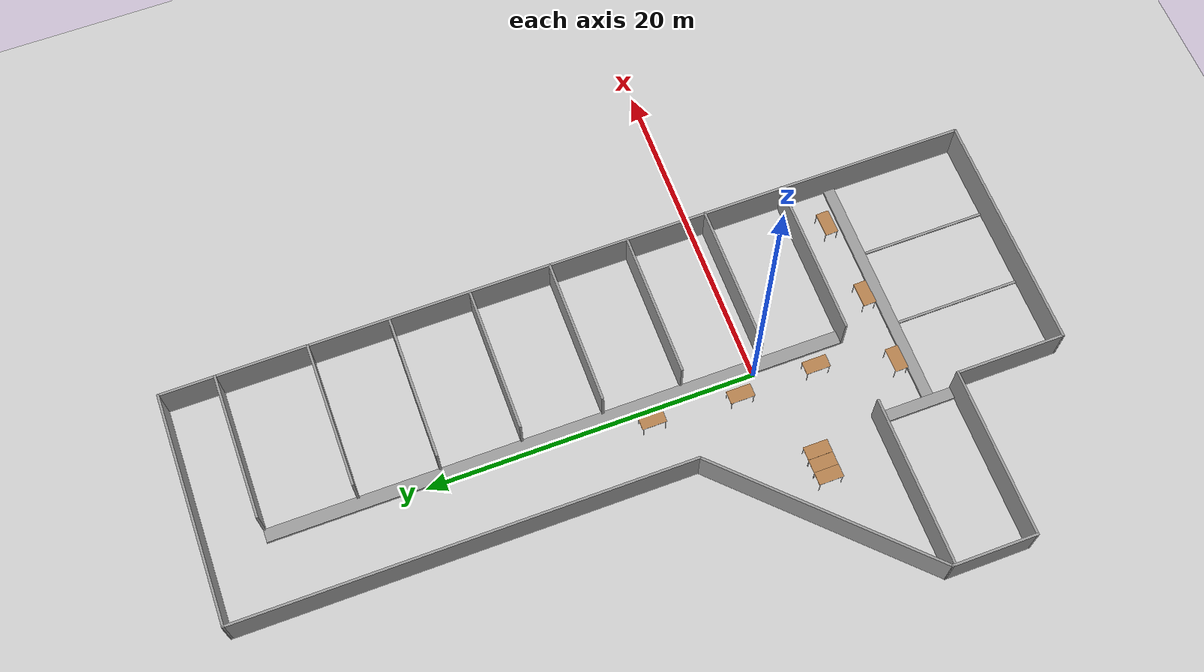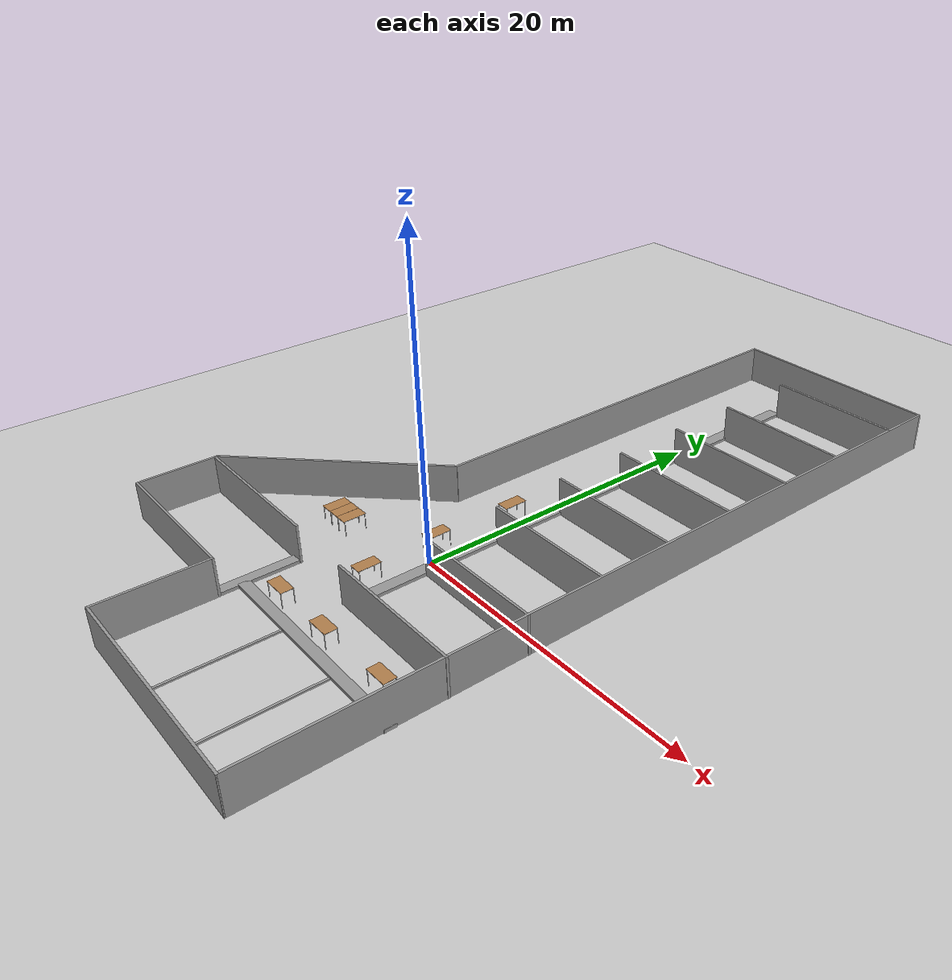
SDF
<sdf version="1.6">
 <world name="default">
  <model name="test__">
   <pose>-2.61572 7.75657 0 0 -0 0</pose>
   <link name="Wall_1">
    <collision name="Wall_1_Collision">
     <geometry><box><size>15 0.15 2.5</size></box></geometry>
     <pose>0 0 1.25 0 -0 0</pose>
    </collision>
    <visual name="Wall_1_Visual">
     <pose>0 0 1.25 0 -0 0</pose>
     <geometry><box><size>15 0.15 2.5</size></box></geometry>
     <material>
      <script><uri>file://media/materials/scripts/gazebo.material</uri><name>Gazebo/Grey</name></script>
      <ambient>1 1 1 1</ambient>
     </material>
     <meta><layer>0</layer></meta>
    </visual>
    <pose>-7.10691 -7.85176 0 0 -0 -2.35619</pose>
   </link>
   <link name="Wall_11">
    <collision name="Wall_11_Collision">
     <geometry><box><size>14.3012 0.15 2.5</size></box></geometry>
     <pose>0 0 1.25 0 -0 0</pose>
    </collision>
    <visual name="Wall_11_Visual">
     <pose>0 0 1.25 0 -0 0</pose>
     <geometry><box><size>14.3012 0.15 2.5</size></box></geometry>
     <material>
      <script><uri>file://media/materials/scripts/gazebo.material</uri><name>Gazebo/Grey</name></script>
      <ambient>1 1 1 1</ambient>
     </material>
     <meta><layer>0</layer></meta>
    </visual>
    <pose>5.26724 24.8122 0 0 -0 3.13958</pose>
   </link>
   <link name="Wall_12">
    <collision name="Wall_12_Collision">
     <geometry><box><size>27.5 0.15 2.5</size></box></geometry>
     <pose>0 0 1.25 0 -0 0</pose>
    </collision>
    <visual name="Wall_12_Visual">
     <pose>0 0 1.25 0 -0 0</pose>
     <geometry><box><size>27.5 0.15 2.5</size></box></geometry>
     <material>
      <script><uri>file://media/materials/scripts/gazebo.material</uri><name>Gazebo/Grey</name></script>
      <ambient>1 1 1 1</ambient>
     </material>
     <meta><layer>0</layer></meta>
    </visual>
    <pose>-1.80834 11.1571 0 0 -0 -1.5708</pose>
   </link>
   <link name="Wall_21">
    <collision name="Wall_21_Collision">
     <geometry><box><size>10.2504 0.15 2.5</size></box></geometry>
     <pose>0 0 1.25 0 -0 0</pose>
    </collision>
    <visual name="Wall_21_Visual">
     <pose>0 0 1.25 0 -0 0</pose>
     <geometry><box><size>10.2504 0.15 2.5</size></box></geometry>
     <material>
      <script><uri>file://media/materials/scripts/gazebo.material</uri><name>Gazebo/Grey</name></script>
      <ambient>1 1 1 1</ambient>
     </material>
     <meta><layer>0</layer></meta>
    </visual>
    <pose>-7.21776 -13.2674 0 0 -0 -3.14011</pose>
   </link>
   <link name="Wall_25">
    <collision name="Wall_25_Collision">
     <geometry><box><size>8.5 0.15 0.1</size></box></geometry>
     <pose>0 0 0.05 0 -0 0</pose>
    </collision>
    <visual name="Wall_25_Visual">
     <pose>0 0 0.05 0 -0 0</pose>
     <geometry><box><size>8.5 0.15 0.1</size></box></geometry>
     <material>
      <script><uri>file://media/materials/scripts/gazebo.material</uri><name>Gazebo/Grey</name></script>
      <ambient>1 1 1 1</ambient>
     </material>
     <meta><layer>0</layer></meta>
    </visual>
    <pose>2.73219 -20.5989 0 0 -0 -1.5708</pose>
   </link>
   <link name="Wall_27">
    <collision name="Wall_27_Collision">
     <geometry><box><size>8.5 0.15 0.1</size></box></geometry>
     <pose>0 0 0.05 0 -0 0</pose>
    </collision>
    <visual name="Wall_27_Visual">
     <pose>0 0 0.05 0 -0 0</pose>
     <geometry><box><size>8.5 0.15 0.1</size></box></geometry>
     <material>
      <script><uri>file://media/materials/scripts/gazebo.material</uri><name>Gazebo/Grey</name></script>
      <ambient>1 1 1 1</ambient>
     </material>
     <meta><layer>0</layer></meta>
    </visual>
    <pose>7.59109 -20.6044 0 0 -0 -1.5708</pose>
   </link>
   <link name="Wall_29">
    <collision name="Wall_29_Collision">
     <geometry><box><size>9.75 0.15 2.5</size></box></geometry>
     <pose>0 0 1.25 0 -0 0</pose>
    </collision>
    <visual name="Wall_29_Visual">
     <pose>0 0 1.25 0 -0 0</pose>
     <geometry><box><size>9.75 0.15 2.5</size></box></geometry>
     <material>
      <script><uri>file://media/materials/scripts/gazebo.material</uri><name>Gazebo/Grey</name></script>
      <ambient>1 1 1 1</ambient>
     </material>
     <meta><layer>0</layer></meta>
    </visual>
    <pose>7.56587 -13.406 0 0 -0 3.14159</pose>
   </link>
   <link name="Wall_3">
    <collision name="Wall_3_Collision">
     <geometry><box><size>5.25 0.15 2.5</size></box></geometry>
     <pose>0 0 1.25 0 -0 0</pose>
    </collision>
    <visual name="Wall_3_Visual">
     <pose>0 0 1.25 0 -0 0</pose>
     <geometry><box><size>5.25 0.15 2.5</size></box></geometry>
     <material>
      <script><uri>file://media/materials/scripts/gazebo.material</uri><name>Gazebo/Grey</name></script>
      <ambient>1 1 1 1</ambient>
     </material>
     <meta><layer>0</layer></meta>
    </visual>
    <pose>-12.3572 -15.652 0 0 -0 -1.5708</pose>
   </link>
   <link name="Wall_31">
    <collision name="Wall_31_Collision">
     <geometry><box><size>34.9 0.8 0.2</size></box></geometry>
     <pose>0 0 0.1 0 -0 0</pose>
    </collision>
    <visual name="Wall_31_Visual">
     <pose>0 0 0.1 0 -0 0</pose>
     <geometry><box><size>34.9 0.8 0.2</size></box></geometry>
     <material>
      <script><uri>file://media/materials/scripts/gazebo.material</uri><name>Gazebo/Grey</name></script>
      <ambient>1 1 1 1</ambient>
     </material>
     <meta><layer>0</layer></meta>
    </visual>
    <pose>3.07724 4.10911 0 0 -0 1.5708</pose>
   </link>
   <link name="Wall_33">
    <collision name="Wall_33_Collision">
     <geometry><box><size>9 0.15 2.5</size></box></geometry>
     <pose>0 0 1.25 0 -0 0</pose>
    </collision>
    <visual name="Wall_33_Visual">
     <pose>0 0 1.25 0 -0 0</pose>
     <geometry><box><size>9 0.15 2.5</size></box></geometry>
     <material>
      <script><uri>file://media/materials/scripts/gazebo.material</uri><name>Gazebo/Grey</name></script>
      <ambient>1 1 1 1</ambient>
     </material>
     <meta><layer>0</layer></meta>
    </visual>
    <pose>7.93132 -8.48567 0 0 -0 0</pose>
   </link>
   <link name="Wall_35">
    <collision name="Wall_35_Collision">
     <geometry><box><size>9 0.15 2.5</size></box></geometry>
     <pose>0 0 1.25 0 -0 0</pose>
    </collision>
    <visual name="Wall_35_Visual">
     <pose>0 0 1.25 0 -0 0</pose>
     <geometry><box><size>9 0.15 2.5</size></box></geometry>
     <material>
      <script><uri>file://media/materials/scripts/gazebo.material</uri><name>Gazebo/Grey</name></script>
      <ambient>1 1 1 1</ambient>
     </material>
     <meta><layer>0</layer></meta>
    </visual>
    <pose>7.91645 -3.54945 0 0 -0 0</pose>
   </link>
   <link name="Wall_37">
    <collision name="Wall_37_Collision">
     <geometry><box><size>9 0.15 2.5</size></box></geometry>
     <pose>0 0 1.25 0 -0 0</pose>
    </collision>
    <visual name="Wall_37_Visual">
     <pose>0 0 1.25 0 -0 0</pose>
     <geometry><box><size>9 0.15 2.5</size></box></geometry>
     <material>
      <script><uri>file://media/materials/scripts/gazebo.material</uri><name>Gazebo/Grey</name></script>
      <ambient>1 1 1 1</ambient>
     </material>
     <meta><layer>0</layer></meta>
    </visual>
    <pose>7.85698 1.29757 0 0 -0 0</pose>
   </link>
   <link name="Wall_39">
    <collision name="Wall_39_Collision">
     <geometry><box><size>9 0.15 2.5</size></box></geometry>
     <pose>0 0 1.25 0 -0 0</pose>
    </collision>
    <visual name="Wall_39_Visual">
     <pose>0 0 1.25 0 -0 0</pose>
     <geometry><box><size>9 0.15 2.5</size></box></geometry>
     <material>
      <script><uri>file://media/materials/scripts/gazebo.material</uri><name>Gazebo/Grey</name></script>
      <ambient>1 1 1 1</ambient>
     </material>
     <meta><layer>0</layer></meta>
    </visual>
    <pose>7.88083 6.21966 0 0 -0 0</pose>
   </link>
   <link name="Wall_4">
    <collision name="Wall_4_Collision">
     <geometry><box><size>10.3399 0.15 2.5</size></box></geometry>
     <pose>0 0 1.25 0 -0 0</pose>
    </collision>
    <visual name="Wall_4_Visual">
     <pose>0 0 1.25 0 -0 0</pose>
     <geometry><box><size>10.3399 0.15 2.5</size></box></geometry>
     <material>
      <script><uri>file://media/materials/scripts/gazebo.material</uri><name>Gazebo/Grey</name></script>
      <ambient>1 1 1 1</ambient>
     </material>
     <meta><layer>0</layer></meta>
    </visual>
    <pose>-7.26247 -18.202 0 0 -0 1.4e-05</pose>
   </link>
   <link name="Wall_41">
    <collision name="Wall_41_Collision">
     <geometry><box><size>9 0.15 2.5</size></box></geometry>
     <pose>0 0 1.25 0 -0 0</pose>
    </collision>
    <visual name="Wall_41_Visual">
     <pose>0 0 1.25 0 -0 0</pose>
     <geometry><box><size>9 0.15 2.5</size></box></geometry>
     <material>
      <script><uri>file://media/materials/scripts/gazebo.material</uri><name>Gazebo/Grey</name></script>
      <ambient>1 1 1 1</ambient>
     </material>
     <meta><layer>0</layer></meta>
    </visual>
    <pose>7.88083 11.1256 0 0 -0 0</pose>
   </link>
   <link name="Wall_43">
    <collision name="Wall_43_Collision">
     <geometry><box><size>9 0.15 2.5</size></box></geometry>
     <pose>0 0 1.25 0 -0 0</pose>
    </collision>
    <visual name="Wall_43_Visual">
     <pose>0 0 1.25 0 -0 0</pose>
     <geometry><box><size>9 0.15 2.5</size></box></geometry>
     <material>
      <script><uri>file://media/materials/scripts/gazebo.material</uri><name>Gazebo/Grey</name></script>
      <ambient>1 1 1 1</ambient>
     </material>
     <meta><layer>0</layer></meta>
    </visual>
    <pose>7.88083 16.0119 0 0 -0 0</pose>
   </link>
   <link name="Wall_45">
    <collision name="Wall_45_Collision">
     <geometry><box><size>9 0.15 2.5</size></box></geometry>
     <pose>0 0 1.25 0 -0 0</pose>
    </collision>
    <visual name="Wall_45_Visual">
     <pose>0 0 1.25 0 -0 0</pose>
     <geometry><box><size>9 0.15 2.5</size></box></geometry>
     <material>
      <script><uri>file://media/materials/scripts/gazebo.material</uri><name>Gazebo/Grey</name></script>
      <ambient>1 1 1 1</ambient>
     </material>
     <meta><layer>0</layer></meta>
    </visual>
    <pose>7.91033 21.4782 0 0 -0 0</pose>
   </link>
   <link name="Wall_49">
    <collision name="Wall_49_Collision">
     <geometry><box><size>5 0.7 0.2</size></box></geometry>
     <pose>0 0 0.1 0 -0 0</pose>
    </collision>
    <visual name="Wall_49_Visual">
     <pose>0 0 0.1 0 -0 0</pose>
     <geometry><box><size>5 0.7 0.2</size></box></geometry>
     <material>
      <script><uri>file://media/materials/scripts/gazebo.material</uri><name>Gazebo/Grey</name></script>
      <ambient>1 1 1 1</ambient>
     </material>
     <meta><layer>0</layer></meta>
    </visual>
    <pose>-2.47472 -15.7158 0 0 -0 1.5708</pose>
   </link>
   <link name="Wall_51">
    <collision name="Wall_51_Collision">
     <geometry><box><size>14.75 0.7 0.2</size></box></geometry>
     <pose>0 0 0.1 0 -0 0</pose>
    </collision>
    <visual name="Wall_51_Visual">
     <pose>0 0 0.1 0 -0 0</pose>
     <geometry><box><size>14.75 0.7 0.2</size></box></geometry>
     <material>
      <script><uri>file://media/materials/scripts/gazebo.material</uri><name>Gazebo/Grey</name></script>
      <ambient>1 1 1 1</ambient>
     </material>
     <meta><layer>0</layer></meta>
    </visual>
    <pose>5.08824 -16.7089 0 0 -0 0</pose>
   </link>
   <link name="Wall_7">
    <collision name="Wall_7_Collision">
     <geometry><box><size>6.75 0.15 2.5</size></box></geometry>
     <pose>0 0 1.25 0 -0 0</pose>
    </collision>
    <visual name="Wall_7_Visual">
     <pose>0 0 1.25 0 -0 0</pose>
     <geometry><box><size>6.75 0.15 2.5</size></box></geometry>
     <material>
      <script><uri>file://media/materials/scripts/gazebo.material</uri><name>Gazebo/Grey</name></script>
      <ambient>1 1 1 1</ambient>
     </material>
     <meta><layer>0</layer></meta>
    </visual>
    <pose>-2.16761 -21.502 0 0 -0 -1.57075</pose>
   </link>
   <link name="Wall_8">
    <collision name="Wall_8_Collision">
     <geometry><box><size>14.6604 0.15 2.5</size></box></geometry>
     <pose>0 0 1.25 0 -0 0</pose>
    </collision>
    <visual name="Wall_8_Visual">
     <pose>0 0 1.25 0 -0 0</pose>
     <geometry><box><size>14.6604 0.15 2.5</size></box></geometry>
     <material>
      <script><uri>file://media/materials/scripts/gazebo.material</uri><name>Gazebo/Grey</name></script>
      <ambient>1 1 1 1</ambient>
     </material>
     <meta><layer>0</layer></meta>
    </visual>
    <pose>5.08768 -24.817 0 0 -0 0.002061</pose>
   </link>
   <link name="Wall_9">
    <collision name="Wall_9_Collision">
     <geometry><box><size>49.75 0.15 2.5</size></box></geometry>
     <pose>0 0 1.25 0 -0 0</pose>
    </collision>
    <visual name="Wall_9_Visual">
     <pose>0 0 1.25 0 -0 0</pose>
     <geometry><box><size>49.75 0.15 2.5</size></box></geometry>
     <material>
      <script><uri>file://media/materials/scripts/gazebo.material</uri><name>Gazebo/Grey</name></script>
      <ambient>1 1 1 1</ambient>
     </material>
     <meta><layer>0</layer></meta>
    </visual>
    <pose>12.3428 -0.002026 0 0 -0 1.5708</pose>
   </link>
   <static>1</static>
  </model>
  <model name="ground_plane">
   <static>1</static>
   <link name="link">
    <collision name="collision">
     <geometry><plane><normal>0 0 1</normal><size>100 100</size></plane></geometry>
     <surface>
      <contact><collide_bitmask>65535</collide_bitmask></contact>
      <friction><ode><mu>100</mu><mu2>50</mu2></ode></friction>
     </surface>
    </collision>
    <visual name="visual">
     <cast_shadows>0</cast_shadows>
     <geometry><plane><normal>0 0 1</normal><size>100 100</size></plane></geometry>
     <material>
      <script><uri>file://media/materials/scripts/gazebo.material</uri><name>Gazebo/Grey</name></script>
     </material>
    </visual>
   </link>
   <pose>-3.51447 11.9136 0 0 -0 0</pose>
  </model>
  <model name="table_clone">
   <static>1</static>
   <link name="link">
    <collision name="surface">
     <pose>0 0 1 0 -0 0</pose>
     <geometry><box><size>1.5 0.8 0.03</size></box></geometry>
     <surface><friction><ode><mu>0.6</mu><mu2>0.6</mu2></ode></friction></surface>
    </collision>
    <visual name="visual1">
     <pose>0 0 1 0 -0 0</pose>
     <geometry><box><size>1.5 0.8 0.03</size></box></geometry>
     <material>
      <script><uri>file://media/materials/scripts/gazebo.material</uri><name>Gazebo/Wood</name></script>
     </material>
    </visual>
    <collision name="front_left_leg">
     <pose>0.68 0.38 0.5 0 -0 0</pose>
     <geometry><cylinder><radius>0.02</radius><length>1</length></cylinder></geometry>
    </collision>
    <visual name="front_left_leg">
     <pose>0.68 0.38 0.5 0 -0 0</pose>
     <geometry><cylinder><radius>0.02</radius><length>1</length></cylinder></geometry>
     <material>
      <script><uri>file://media/materials/scripts/gazebo.material</uri><name>Gazebo/Grey</name></script>
     </material>
    </visual>
    <collision name="front_right_leg">
     <pose>0.68 -0.38 0.5 0 -0 0</pose>
     <geometry><cylinder><radius>0.02</radius><length>1</length></cylinder></geometry>
    </collision>
    <visual name="front_right_leg">
     <pose>0.68 -0.38 0.5 0 -0 0</pose>
     <geometry><cylinder><radius>0.02</radius><length>1</length></cylinder></geometry>
     <material>
      <script><uri>file://media/materials/scripts/gazebo.material</uri><name>Gazebo/Grey</name></script>
     </material>
    </visual>
    <collision name="back_right_leg">
     <pose>-0.68 -0.38 0.5 0 -0 0</pose>
     <geometry><cylinder><radius>0.02</radius><length>1</length></cylinder></geometry>
    </collision>
    <visual name="back_right_leg">
     <pose>-0.68 -0.38 0.5 0 -0 0</pose>
     <geometry><cylinder><radius>0.02</radius><length>1</length></cylinder></geometry>
     <material>
      <script><uri>file://media/materials/scripts/gazebo.material</uri><name>Gazebo/Grey</name></script>
     </material>
    </visual>
    <collision name="back_left_leg">
     <pose>-0.68 0.38 0.5 0 -0 0</pose>
     <geometry><cylinder><radius>0.02</radius><length>1</length></cylinder></geometry>
    </collision>
    <visual name="back_left_leg">
     <pose>-0.68 0.38 0.5 0 -0 0</pose>
     <geometry><cylinder><radius>0.02</radius><length>1</length></cylinder></geometry>
     <material>
      <script><uri>file://media/materials/scripts/gazebo.material</uri><name>Gazebo/Grey</name></script>
     </material>
    </visual>
   </link>
   <pose>-1.16496 1.3236 0 0 0 -1.56764</pose>
  </model>
  <model name="table_clone_clone">
   <static>1</static>
   <link name="link">
    <collision name="surface">
     <pose>0 0 1 0 -0 0</pose>
     <geometry><box><size>1.5 0.8 0.03</size></box></geometry>
     <surface><friction><ode><mu>0.6</mu><mu2>0.6</mu2></ode></friction></surface>
    </collision>
    <visual name="visual1">
     <pose>0 0 1 0 -0 0</pose>
     <geometry><box><size>1.5 0.8 0.03</size></box></geometry>
     <material>
      <script><uri>file://media/materials/scripts/gazebo.material</uri><name>Gazebo/Wood</name></script>
     </material>
    </visual>
    <collision name="front_left_leg">
     <pose>0.68 0.38 0.5 0 -0 0</pose>
     <geometry><cylinder><radius>0.02</radius><length>1</length></cylinder></geometry>
    </collision>
    <visual name="front_left_leg">
     <pose>0.68 0.38 0.5 0 -0 0</pose>
     <geometry><cylinder><radius>0.02</radius><length>1</length></cylinder></geometry>
     <material>
      <script><uri>file://media/materials/scripts/gazebo.material</uri><name>Gazebo/Grey</name></script>
     </material>
    </visual>
    <collision name="front_right_leg">
     <pose>0.68 -0.38 0.5 0 -0 0</pose>
     <geometry><cylinder><radius>0.02</radius><length>1</length></cylinder></geometry>
    </collision>
    <visual name="front_right_leg">
     <pose>0.68 -0.38 0.5 0 -0 0</pose>
     <geometry><cylinder><radius>0.02</radius><length>1</length></cylinder></geometry>
     <material>
      <script><uri>file://media/materials/scripts/gazebo.material</uri><name>Gazebo/Grey</name></script>
     </material>
    </visual>
    <collision name="back_right_leg">
     <pose>-0.68 -0.38 0.5 0 -0 0</pose>
     <geometry><cylinder><radius>0.02</radius><length>1</length></cylinder></geometry>
    </collision>
    <visual name="back_right_leg">
     <pose>-0.68 -0.38 0.5 0 -0 0</pose>
     <geometry><cylinder><radius>0.02</radius><length>1</length></cylinder></geometry>
     <material>
      <script><uri>file://media/materials/scripts/gazebo.material</uri><name>Gazebo/Grey</name></script>
     </material>
    </visual>
    <collision name="back_left_leg">
     <pose>-0.68 0.38 0.5 0 -0 0</pose>
     <geometry><cylinder><radius>0.02</radius><length>1</length></cylinder></geometry>
    </collision>
    <visual name="back_left_leg">
     <pose>-0.68 0.38 0.5 0 -0 0</pose>
     <geometry><cylinder><radius>0.02</radius><length>1</length></cylinder></geometry>
     <material>
      <script><uri>file://media/materials/scripts/gazebo.material</uri><name>Gazebo/Grey</name></script>
     </material>
    </visual>
   </link>
   <pose>-0.995575 -3.46829 0 0 0 -1.56764</pose>
  </model>
  <model name="table_clone_clone_0">
   <static>1</static>
   <link name="link">
    <collision name="surface">
     <pose>0 0 1 0 -0 0</pose>
     <geometry><box><size>1.5 0.8 0.03</size></box></geometry>
     <surface><friction><ode><mu>0.6</mu><mu2>0.6</mu2></ode></friction></surface>
    </collision>
    <visual name="visual1">
     <pose>0 0 1 0 -0 0</pose>
     <geometry><box><size>1.5 0.8 0.03</size></box></geometry>
     <material>
      <script><uri>file://media/materials/scripts/gazebo.material</uri><name>Gazebo/Wood</name></script>
     </material>
    </visual>
    <collision name="front_left_leg">
     <pose>0.68 0.38 0.5 0 -0 0</pose>
     <geometry><cylinder><radius>0.02</radius><length>1</length></cylinder></geometry>
    </collision>
    <visual name="front_left_leg">
     <pose>0.68 0.38 0.5 0 -0 0</pose>
     <geometry><cylinder><radius>0.02</radius><length>1</length></cylinder></geometry>
     <material>
      <script><uri>file://media/materials/scripts/gazebo.material</uri><name>Gazebo/Grey</name></script>
     </material>
    </visual>
    <collision name="front_right_leg">
     <pose>0.68 -0.38 0.5 0 -0 0</pose>
     <geometry><cylinder><radius>0.02</radius><length>1</length></cylinder></geometry>
    </collision>
    <visual name="front_right_leg">
     <pose>0.68 -0.38 0.5 0 -0 0</pose>
     <geometry><cylinder><radius>0.02</radius><length>1</length></cylinder></geometry>
     <material>
      <script><uri>file://media/materials/scripts/gazebo.material</uri><name>Gazebo/Grey</name></script>
     </material>
    </visual>
    <collision name="back_right_leg">
     <pose>-0.68 -0.38 0.5 0 -0 0</pose>
     <geometry><cylinder><radius>0.02</radius><length>1</length></cylinder></geometry>
    </collision>
    <visual name="back_right_leg">
     <pose>-0.68 -0.38 0.5 0 -0 0</pose>
     <geometry><cylinder><radius>0.02</radius><length>1</length></cylinder></geometry>
     <material>
      <script><uri>file://media/materials/scripts/gazebo.material</uri><name>Gazebo/Grey</name></script>
     </material>
    </visual>
    <collision name="back_left_leg">
     <pose>-0.68 0.38 0.5 0 -0 0</pose>
     <geometry><cylinder><radius>0.02</radius><length>1</length></cylinder></geometry>
    </collision>
    <visual name="back_left_leg">
     <pose>-0.68 0.38 0.5 0 -0 0</pose>
     <geometry><cylinder><radius>0.02</radius><length>1</length></cylinder></geometry>
     <material>
      <script><uri>file://media/materials/scripts/gazebo.material</uri><name>Gazebo/Grey</name></script>
     </material>
    </visual>
   </link>
   <pose>-0.876309 6.63945 0 0 0 -1.56764</pose>
  </model>
  <model name="table_clone_clone_5">
   <static>1</static>
   <link name="link">
    <collision name="surface">
     <pose>0 0 1 0 -0 0</pose>
     <geometry><box><size>1.5 0.8 0.03</size></box></geometry>
     <surface><friction><ode><mu>0.6</mu><mu2>0.6</mu2></ode></friction></surface>
    </collision>
    <visual name="visual1">
     <pose>0 0 1 0 -0 0</pose>
     <geometry><box><size>1.5 0.8 0.03</size></box></geometry>
     <material>
      <script><uri>file://media/materials/scripts/gazebo.material</uri><name>Gazebo/Wood</name></script>
     </material>
    </visual>
    <collision name="front_left_leg">
     <pose>0.68 0.38 0.5 0 -0 0</pose>
     <geometry><cylinder><radius>0.02</radius><length>1</length></cylinder></geometry>
    </collision>
    <visual name="front_left_leg">
     <pose>0.68 0.38 0.5 0 -0 0</pose>
     <geometry><cylinder><radius>0.02</radius><length>1</length></cylinder></geometry>
     <material>
      <script><uri>file://media/materials/scripts/gazebo.material</uri><name>Gazebo/Grey</name></script>
     </material>
    </visual>
    <collision name="front_right_leg">
     <pose>0.68 -0.38 0.5 0 -0 0</pose>
     <geometry><cylinder><radius>0.02</radius><length>1</length></cylinder></geometry>
    </collision>
    <visual name="front_right_leg">
     <pose>0.68 -0.38 0.5 0 -0 0</pose>
     <geometry><cylinder><radius>0.02</radius><length>1</length></cylinder></geometry>
     <material>
      <script><uri>file://media/materials/scripts/gazebo.material</uri><name>Gazebo/Grey</name></script>
     </material>
    </visual>
    <collision name="back_right_leg">
     <pose>-0.68 -0.38 0.5 0 -0 0</pose>
     <geometry><cylinder><radius>0.02</radius><length>1</length></cylinder></geometry>
    </collision>
    <visual name="back_right_leg">
     <pose>-0.68 -0.38 0.5 0 -0 0</pose>
     <geometry><cylinder><radius>0.02</radius><length>1</length></cylinder></geometry>
     <material>
      <script><uri>file://media/materials/scripts/gazebo.material</uri><name>Gazebo/Grey</name></script>
     </material>
    </visual>
    <collision name="back_left_leg">
     <pose>-0.68 0.38 0.5 0 -0 0</pose>
     <geometry><cylinder><radius>0.02</radius><length>1</length></cylinder></geometry>
    </collision>
    <visual name="back_left_leg">
     <pose>-0.68 0.38 0.5 0 -0 0</pose>
     <geometry><cylinder><radius>0.02</radius><length>1</length></cylinder></geometry>
     <material>
      <script><uri>file://media/materials/scripts/gazebo.material</uri><name>Gazebo/Grey</name></script>
     </material>
    </visual>
   </link>
   <pose>7.26268 -7.72077 0 0 -0 0.016845</pose>
  </model>
  <model name="table_clone_clone_5_clone">
   <static>1</static>
   <link name="link">
    <collision name="surface">
     <pose>0 0 1 0 -0 0</pose>
     <geometry><box><size>1.5 0.8 0.03</size></box></geometry>
     <surface><friction><ode><mu>0.6</mu><mu2>0.6</mu2></ode></friction></surface>
    </collision>
    <visual name="visual1">
     <pose>0 0 1 0 -0 0</pose>
     <geometry><box><size>1.5 0.8 0.03</size></box></geometry>
     <material>
      <script><uri>file://media/materials/scripts/gazebo.material</uri><name>Gazebo/Wood</name></script>
     </material>
    </visual>
    <collision name="front_left_leg">
     <pose>0.68 0.38 0.5 0 -0 0</pose>
     <geometry><cylinder><radius>0.02</radius><length>1</length></cylinder></geometry>
    </collision>
    <visual name="front_left_leg">
     <pose>0.68 0.38 0.5 0 -0 0</pose>
     <geometry><cylinder><radius>0.02</radius><length>1</length></cylinder></geometry>
     <material>
      <script><uri>file://media/materials/scripts/gazebo.material</uri><name>Gazebo/Grey</name></script>
     </material>
    </visual>
    <collision name="front_right_leg">
     <pose>0.68 -0.38 0.5 0 -0 0</pose>
     <geometry><cylinder><radius>0.02</radius><length>1</length></cylinder></geometry>
    </collision>
    <visual name="front_right_leg">
     <pose>0.68 -0.38 0.5 0 -0 0</pose>
     <geometry><cylinder><radius>0.02</radius><length>1</length></cylinder></geometry>
     <material>
      <script><uri>file://media/materials/scripts/gazebo.material</uri><name>Gazebo/Grey</name></script>
     </material>
    </visual>
    <collision name="back_right_leg">
     <pose>-0.68 -0.38 0.5 0 -0 0</pose>
     <geometry><cylinder><radius>0.02</radius><length>1</length></cylinder></geometry>
    </collision>
    <visual name="back_right_leg">
     <pose>-0.68 -0.38 0.5 0 -0 0</pose>
     <geometry><cylinder><radius>0.02</radius><length>1</length></cylinder></geometry>
     <material>
      <script><uri>file://media/materials/scripts/gazebo.material</uri><name>Gazebo/Grey</name></script>
     </material>
    </visual>
    <collision name="back_left_leg">
     <pose>-0.68 0.38 0.5 0 -0 0</pose>
     <geometry><cylinder><radius>0.02</radius><length>1</length></cylinder></geometry>
    </collision>
    <visual name="back_left_leg">
     <pose>-0.68 0.38 0.5 0 -0 0</pose>
     <geometry><cylinder><radius>0.02</radius><length>1</length></cylinder></geometry>
     <material>
      <script><uri>file://media/materials/scripts/gazebo.material</uri><name>Gazebo/Grey</name></script>
     </material>
    </visual>
   </link>
   <pose>2.20011 -7.95706 0 0 -0 0.016845</pose>
  </model>
  <model name="table_clone_clone_5_clone_0">
   <static>1</static>
   <link name="link">
    <collision name="surface">
     <pose>0 0 1 0 -0 0</pose>
     <geometry><box><size>1.5 0.8 0.03</size></box></geometry>
     <surface><friction><ode><mu>0.6</mu><mu2>0.6</mu2></ode></friction></surface>
    </collision>
    <visual name="visual1">
     <pose>0 0 1 0 -0 0</pose>
     <geometry><box><size>1.5 0.8 0.03</size></box></geometry>
     <material>
      <script><uri>file://media/materials/scripts/gazebo.material</uri><name>Gazebo/Wood</name></script>
     </material>
    </visual>
    <collision name="front_left_leg">
     <pose>0.68 0.38 0.5 0 -0 0</pose>
     <geometry><cylinder><radius>0.02</radius><length>1</length></cylinder></geometry>
    </collision>
    <visual name="front_left_leg">
     <pose>0.68 0.38 0.5 0 -0 0</pose>
     <geometry><cylinder><radius>0.02</radius><length>1</length></cylinder></geometry>
     <material>
      <script><uri>file://media/materials/scripts/gazebo.material</uri><name>Gazebo/Grey</name></script>
     </material>
    </visual>
    <collision name="front_right_leg">
     <pose>0.68 -0.38 0.5 0 -0 0</pose>
     <geometry><cylinder><radius>0.02</radius><length>1</length></cylinder></geometry>
    </collision>
    <visual name="front_right_leg">
     <pose>0.68 -0.38 0.5 0 -0 0</pose>
     <geometry><cylinder><radius>0.02</radius><length>1</length></cylinder></geometry>
     <material>
      <script><uri>file://media/materials/scripts/gazebo.material</uri><name>Gazebo/Grey</name></script>
     </material>
    </visual>
    <collision name="back_right_leg">
     <pose>-0.68 -0.38 0.5 0 -0 0</pose>
     <geometry><cylinder><radius>0.02</radius><length>1</length></cylinder></geometry>
    </collision>
    <visual name="back_right_leg">
     <pose>-0.68 -0.38 0.5 0 -0 0</pose>
     <geometry><cylinder><radius>0.02</radius><length>1</length></cylinder></geometry>
     <material>
      <script><uri>file://media/materials/scripts/gazebo.material</uri><name>Gazebo/Grey</name></script>
     </material>
    </visual>
    <collision name="back_left_leg">
     <pose>-0.68 0.38 0.5 0 -0 0</pose>
     <geometry><cylinder><radius>0.02</radius><length>1</length></cylinder></geometry>
    </collision>
    <visual name="back_left_leg">
     <pose>-0.68 0.38 0.5 0 -0 0</pose>
     <geometry><cylinder><radius>0.02</radius><length>1</length></cylinder></geometry>
     <material>
      <script><uri>file://media/materials/scripts/gazebo.material</uri><name>Gazebo/Grey</name></script>
     </material>
    </visual>
   </link>
   <pose>-2.27876 -7.99089 0 0 -0 0.016845</pose>
  </model>
  <model name="table_clone_clone_clone">
   <static>1</static>
   <link name="link">
    <collision name="surface">
     <pose>0 0 1 0 -0 0</pose>
     <geometry><box><size>1.5 0.8 0.03</size></box></geometry>
     <surface><friction><ode><mu>0.6</mu><mu2>0.6</mu2></ode></friction></surface>
    </collision>
    <visual name="visual1">
     <pose>0 0 1 0 -0 0</pose>
     <geometry><box><size>1.5 0.8 0.03</size></box></geometry>
     <material>
      <script><uri>file://media/materials/scripts/gazebo.material</uri><name>Gazebo/Wood</name></script>
     </material>
    </visual>
    <collision name="front_left_leg">
     <pose>0.68 0.38 0.5 0 -0 0</pose>
     <geometry><cylinder><radius>0.02</radius><length>1</length></cylinder></geometry>
    </collision>
    <visual name="front_left_leg">
     <pose>0.68 0.38 0.5 0 -0 0</pose>
     <geometry><cylinder><radius>0.02</radius><length>1</length></cylinder></geometry>
     <material>
      <script><uri>file://media/materials/scripts/gazebo.material</uri><name>Gazebo/Grey</name></script>
     </material>
    </visual>
    <collision name="front_right_leg">
     <pose>0.68 -0.38 0.5 0 -0 0</pose>
     <geometry><cylinder><radius>0.02</radius><length>1</length></cylinder></geometry>
    </collision>
    <visual name="front_right_leg">
     <pose>0.68 -0.38 0.5 0 -0 0</pose>
     <geometry><cylinder><radius>0.02</radius><length>1</length></cylinder></geometry>
     <material>
      <script><uri>file://media/materials/scripts/gazebo.material</uri><name>Gazebo/Grey</name></script>
     </material>
    </visual>
    <collision name="back_right_leg">
     <pose>-0.68 -0.38 0.5 0 -0 0</pose>
     <geometry><cylinder><radius>0.02</radius><length>1</length></cylinder></geometry>
    </collision>
    <visual name="back_right_leg">
     <pose>-0.68 -0.38 0.5 0 -0 0</pose>
     <geometry><cylinder><radius>0.02</radius><length>1</length></cylinder></geometry>
     <material>
      <script><uri>file://media/materials/scripts/gazebo.material</uri><name>Gazebo/Grey</name></script>
     </material>
    </visual>
    <collision name="back_left_leg">
     <pose>-0.68 0.38 0.5 0 -0 0</pose>
     <geometry><cylinder><radius>0.02</radius><length>1</length></cylinder></geometry>
    </collision>
    <visual name="back_left_leg">
     <pose>-0.68 0.38 0.5 0 -0 0</pose>
     <geometry><cylinder><radius>0.02</radius><length>1</length></cylinder></geometry>
     <material>
      <script><uri>file://media/materials/scripts/gazebo.material</uri><name>Gazebo/Grey</name></script>
     </material>
    </visual>
   </link>
   <pose>-5.84377 -1.48479 0 0 0 -1.56764</pose>
  </model>
  <model name="table_clone_clone_clone_0">
   <static>1</static>
   <link name="link">
    <collision name="surface">
     <pose>0 0 1 0 -0 0</pose>
     <geometry><box><size>1.5 0.8 0.03</size></box></geometry>
     <surface><friction><ode><mu>0.6</mu><mu2>0.6</mu2></ode></friction></surface>
    </collision>
    <visual name="visual1">
     <pose>0 0 1 0 -0 0</pose>
     <geometry><box><size>1.5 0.8 0.03</size></box></geometry>
     <material>
      <script><uri>file://media/materials/scripts/gazebo.material</uri><name>Gazebo/Wood</name></script>
     </material>
    </visual>
    <collision name="front_left_leg">
     <pose>0.68 0.38 0.5 0 -0 0</pose>
     <geometry><cylinder><radius>0.02</radius><length>1</length></cylinder></geometry>
    </collision>
    <visual name="front_left_leg">
     <pose>0.68 0.38 0.5 0 -0 0</pose>
     <geometry><cylinder><radius>0.02</radius><length>1</length></cylinder></geometry>
     <material>
      <script><uri>file://media/materials/scripts/gazebo.material</uri><name>Gazebo/Grey</name></script>
     </material>
    </visual>
    <collision name="front_right_leg">
     <pose>0.68 -0.38 0.5 0 -0 0</pose>
     <geometry><cylinder><radius>0.02</radius><length>1</length></cylinder></geometry>
    </collision>
    <visual name="front_right_leg">
     <pose>0.68 -0.38 0.5 0 -0 0</pose>
     <geometry><cylinder><radius>0.02</radius><length>1</length></cylinder></geometry>
     <material>
      <script><uri>file://media/materials/scripts/gazebo.material</uri><name>Gazebo/Grey</name></script>
     </material>
    </visual>
    <collision name="back_right_leg">
     <pose>-0.68 -0.38 0.5 0 -0 0</pose>
     <geometry><cylinder><radius>0.02</radius><length>1</length></cylinder></geometry>
    </collision>
    <visual name="back_right_leg">
     <pose>-0.68 -0.38 0.5 0 -0 0</pose>
     <geometry><cylinder><radius>0.02</radius><length>1</length></cylinder></geometry>
     <material>
      <script><uri>file://media/materials/scripts/gazebo.material</uri><name>Gazebo/Grey</name></script>
     </material>
    </visual>
    <collision name="back_left_leg">
     <pose>-0.68 0.38 0.5 0 -0 0</pose>
     <geometry><cylinder><radius>0.02</radius><length>1</length></cylinder></geometry>
    </collision>
    <visual name="back_left_leg">
     <pose>-0.68 0.38 0.5 0 -0 0</pose>
     <geometry><cylinder><radius>0.02</radius><length>1</length></cylinder></geometry>
     <material>
      <script><uri>file://media/materials/scripts/gazebo.material</uri><name>Gazebo/Grey</name></script>
     </material>
    </visual>
   </link>
   <pose>-6.64806 -1.48463 0 0 0 -1.56764</pose>
  </model>
  <model name="table_clone_clone_clone_1">
   <static>1</static>
   <link name="link">
    <collision name="surface">
     <pose>0 0 1 0 -0 0</pose>
     <geometry><box><size>1.5 0.8 0.03</size></box></geometry>
     <surface><friction><ode><mu>0.6</mu><mu2>0.6</mu2></ode></friction></surface>
    </collision>
    <visual name="visual1">
     <pose>0 0 1 0 -0 0</pose>
     <geometry><box><size>1.5 0.8 0.03</size></box></geometry>
     <material>
      <script><uri>file://media/materials/scripts/gazebo.material</uri><name>Gazebo/Wood</name></script>
     </material>
    </visual>
    <collision name="front_left_leg">
     <pose>0.68 0.38 0.5 0 -0 0</pose>
     <geometry><cylinder><radius>0.02</radius><length>1</length></cylinder></geometry>
    </collision>
    <visual name="front_left_leg">
     <pose>0.68 0.38 0.5 0 -0 0</pose>
     <geometry><cylinder><radius>0.02</radius><length>1</length></cylinder></geometry>
     <material>
      <script><uri>file://media/materials/scripts/gazebo.material</uri><name>Gazebo/Grey</name></script>
     </material>
    </visual>
    <collision name="front_right_leg">
     <pose>0.68 -0.38 0.5 0 -0 0</pose>
     <geometry><cylinder><radius>0.02</radius><length>1</length></cylinder></geometry>
    </collision>
    <visual name="front_right_leg">
     <pose>0.68 -0.38 0.5 0 -0 0</pose>
     <geometry><cylinder><radius>0.02</radius><length>1</length></cylinder></geometry>
     <material>
      <script><uri>file://media/materials/scripts/gazebo.material</uri><name>Gazebo/Grey</name></script>
     </material>
    </visual>
    <collision name="back_right_leg">
     <pose>-0.68 -0.38 0.5 0 -0 0</pose>
     <geometry><cylinder><radius>0.02</radius><length>1</length></cylinder></geometry>
    </collision>
    <visual name="back_right_leg">
     <pose>-0.68 -0.38 0.5 0 -0 0</pose>
     <geometry><cylinder><radius>0.02</radius><length>1</length></cylinder></geometry>
     <material>
      <script><uri>file://media/materials/scripts/gazebo.material</uri><name>Gazebo/Grey</name></script>
     </material>
    </visual>
    <collision name="back_left_leg">
     <pose>-0.68 0.38 0.5 0 -0 0</pose>
     <geometry><cylinder><radius>0.02</radius><length>1</length></cylinder></geometry>
    </collision>
    <visual name="back_left_leg">
     <pose>-0.68 0.38 0.5 0 -0 0</pose>
     <geometry><cylinder><radius>0.02</radius><length>1</length></cylinder></geometry>
     <material>
      <script><uri>file://media/materials/scripts/gazebo.material</uri><name>Gazebo/Grey</name></script>
     </material>
    </visual>
   </link>
   <pose>-7.43284 -1.49532 0 0 0 -1.56764</pose>
  </model>
 </world>
</sdf>
